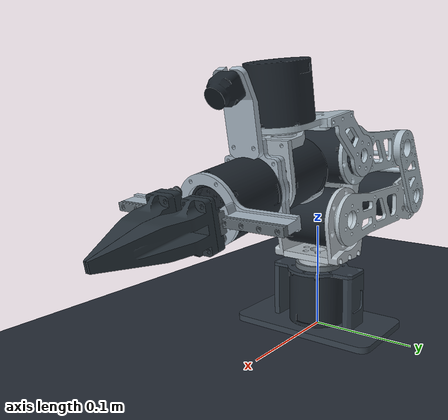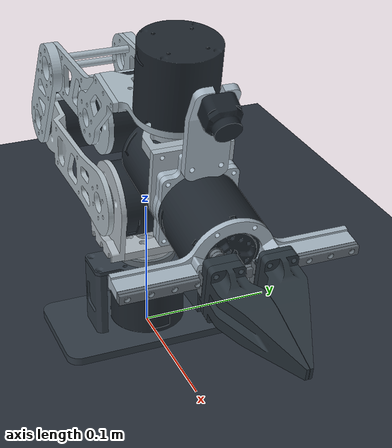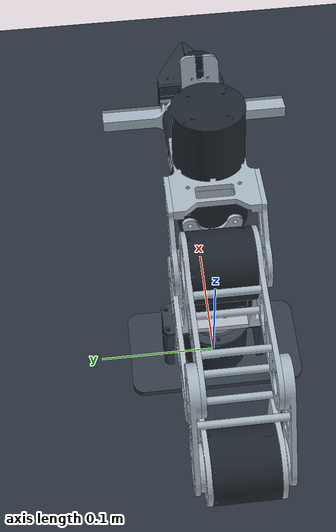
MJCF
<?xml version='1.0' encoding='utf-8'?>
<mujoco model="viscous_arm_dry_cad_v1">
  <compiler angle="radian" meshdir="meshes" autolimits="true" inertiafromgeom="false" fusestatic="false" />
  <option timestep=".001" gravity="0 0 -9.81" integrator="implicitfast" iterations="80" />
  <size njmax="3000" nconmax="1000" />
  <visual>
    <global offwidth="1400" offheight="1000" />
    <headlight diffuse=".7 .7 .7" ambient=".3 .3 .3" />
  </visual>
  <default>
    <joint damping="0" armature="0" />
    <geom friction=".6 .005 .0001" solref=".005 1" solimp=".95 .99 .001" margin="0" />
  </default>
  <asset>
    <mesh name="visual_000" file="part_000.stl" />
    <mesh name="visual_001" file="part_001.stl" />
    <mesh name="visual_002" file="part_002.stl" />
    <mesh name="visual_014" file="part_014.stl" />
    <mesh name="visual_015" file="part_015.stl" />
    <mesh name="visual_016" file="part_016.stl" />
    <mesh name="collision_000" file="collision_000.stl" />
    <mesh name="collision_002" file="collision_002.stl" />
    <mesh name="collision_014_00" file="collision_014_00.stl" />
    <mesh name="collision_014_01" file="collision_014_01.stl" />
    <mesh name="collision_014_02" file="collision_014_02.stl" />
    <mesh name="collision_014_03" file="collision_014_03.stl" />
    <mesh name="collision_014_04" file="collision_014_04.stl" />
    <mesh name="collision_014_05" file="collision_014_05.stl" />
    <mesh name="collision_015" file="collision_015.stl" />
    <mesh name="collision_016" file="collision_016.stl" />
    <mesh name="visual_003" file="part_003.stl" />
    <mesh name="visual_004" file="part_004.stl" />
    <mesh name="visual_005" file="part_005.stl" />
    <mesh name="visual_006" file="part_006.stl" />
    <mesh name="visual_007" file="part_007.stl" />
    <mesh name="visual_019" file="part_019.stl" />
    <mesh name="collision_003_00" file="collision_003_00.stl" />
    <mesh name="collision_003_01" file="collision_003_01.stl" />
    <mesh name="collision_003_02" file="collision_003_02.stl" />
    <mesh name="collision_003_03" file="collision_003_03.stl" />
    <mesh name="collision_003_04" file="collision_003_04.stl" />
    <mesh name="collision_003_05" file="collision_003_05.stl" />
    <mesh name="collision_004" file="collision_004.stl" />
    <mesh name="collision_005_00" file="collision_005_00.stl" />
    <mesh name="collision_005_01" file="collision_005_01.stl" />
    <mesh name="collision_005_02" file="collision_005_02.stl" />
    <mesh name="collision_005_03" file="collision_005_03.stl" />
    <mesh name="collision_005_04" file="collision_005_04.stl" />
    <mesh name="collision_005_05" file="collision_005_05.stl" />
    <mesh name="collision_005_06" file="collision_005_06.stl" />
    <mesh name="collision_006_00" file="collision_006_00.stl" />
    <mesh name="collision_006_01" file="collision_006_01.stl" />
    <mesh name="collision_006_02" file="collision_006_02.stl" />
    <mesh name="collision_006_03" file="collision_006_03.stl" />
    <mesh name="collision_006_04" file="collision_006_04.stl" />
    <mesh name="collision_006_05" file="collision_006_05.stl" />
    <mesh name="collision_019" file="collision_019.stl" />
    <mesh name="visual_008" file="part_008.stl" />
    <mesh name="visual_009" file="part_009.stl" />
    <mesh name="visual_010" file="part_010.stl" />
    <mesh name="visual_011" file="part_011.stl" />
    <mesh name="visual_012" file="part_012.stl" />
    <mesh name="visual_018" file="part_018.stl" />
    <mesh name="collision_upper_arm_shell_00" file="collision_upper_arm_shell_00.stl" />
    <mesh name="collision_upper_arm_shell_01" file="collision_upper_arm_shell_01.stl" />
    <mesh name="collision_upper_arm_shell_02" file="collision_upper_arm_shell_02.stl" />
    <mesh name="visual_013" file="part_013.stl" />
    <mesh name="visual_017" file="part_017.stl" />
    <mesh name="visual_058" file="part_058.stl" />
    <mesh name="visual_060" file="part_060.stl" />
    <mesh name="visual_061" file="part_061.stl" />
    <mesh name="visual_062" file="part_062.stl" />
    <mesh name="visual_063" file="part_063.stl" />
    <mesh name="visual_064" file="part_064.stl" />
    <mesh name="visual_065" file="part_065.stl" />
    <mesh name="visual_066" file="part_066.stl" />
    <mesh name="visual_067" file="part_067.stl" />
    <mesh name="visual_068" file="part_068.stl" />
    <mesh name="visual_069" file="part_069.stl" />
    <mesh name="collision_forearm_shell_00" file="collision_forearm_shell_00.stl" />
    <mesh name="collision_forearm_shell_01" file="collision_forearm_shell_01.stl" />
    <mesh name="collision_forearm_shell_02" file="collision_forearm_shell_02.stl" />
    <mesh name="collision_forearm_shell_03" file="collision_forearm_shell_03.stl" />
    <mesh name="collision_forearm_shell_04" file="collision_forearm_shell_04.stl" />
    <mesh name="collision_forearm_shell_05" file="collision_forearm_shell_05.stl" />
    <mesh name="collision_forearm_shell_06" file="collision_forearm_shell_06.stl" />
    <mesh name="collision_forearm_shell_07" file="collision_forearm_shell_07.stl" />
    <mesh name="visual_053" file="part_053.stl" />
    <mesh name="visual_054" file="part_054.stl" />
    <mesh name="visual_055" file="part_055.stl" />
    <mesh name="visual_056" file="part_056.stl" />
    <mesh name="visual_057" file="part_057.stl" />
    <mesh name="collision_053" file="collision_053.stl" />
    <mesh name="collision_054_00" file="collision_054_00.stl" />
    <mesh name="collision_054_01" file="collision_054_01.stl" />
    <mesh name="collision_054_02" file="collision_054_02.stl" />
    <mesh name="collision_054_03" file="collision_054_03.stl" />
    <mesh name="collision_054_04" file="collision_054_04.stl" />
    <mesh name="collision_054_05" file="collision_054_05.stl" />
    <mesh name="collision_054_06" file="collision_054_06.stl" />
    <mesh name="collision_054_07" file="collision_054_07.stl" />
    <mesh name="collision_054_08" file="collision_054_08.stl" />
    <mesh name="collision_054_09" file="collision_054_09.stl" />
    <mesh name="collision_055_00" file="collision_055_00.stl" />
    <mesh name="collision_055_01" file="collision_055_01.stl" />
    <mesh name="collision_055_02" file="collision_055_02.stl" />
    <mesh name="collision_055_03" file="collision_055_03.stl" />
    <mesh name="collision_055_04" file="collision_055_04.stl" />
    <mesh name="collision_055_05" file="collision_055_05.stl" />
    <mesh name="collision_056_00" file="collision_056_00.stl" />
    <mesh name="collision_056_01" file="collision_056_01.stl" />
    <mesh name="collision_056_02" file="collision_056_02.stl" />
    <mesh name="collision_056_03" file="collision_056_03.stl" />
    <mesh name="collision_056_04" file="collision_056_04.stl" />
    <mesh name="collision_056_05" file="collision_056_05.stl" />
    <mesh name="collision_057" file="collision_057.stl" />
    <mesh name="visual_049" file="part_049.stl" />
    <mesh name="visual_050" file="part_050.stl" />
    <mesh name="visual_051" file="part_051.stl" />
    <mesh name="visual_052" file="part_052.stl" />
    <mesh name="visual_059" file="part_059.stl" />
    <mesh name="collision_049" file="collision_049.stl" />
    <mesh name="collision_050_00" file="collision_050_00.stl" />
    <mesh name="collision_050_01" file="collision_050_01.stl" />
    <mesh name="collision_050_02" file="collision_050_02.stl" />
    <mesh name="collision_050_03" file="collision_050_03.stl" />
    <mesh name="collision_050_04" file="collision_050_04.stl" />
    <mesh name="collision_050_05" file="collision_050_05.stl" />
    <mesh name="collision_050_06" file="collision_050_06.stl" />
    <mesh name="collision_050_07" file="collision_050_07.stl" />
    <mesh name="collision_051_00" file="collision_051_00.stl" />
    <mesh name="collision_051_01" file="collision_051_01.stl" />
    <mesh name="collision_051_02" file="collision_051_02.stl" />
    <mesh name="collision_051_03" file="collision_051_03.stl" />
    <mesh name="collision_051_04" file="collision_051_04.stl" />
    <mesh name="collision_051_05" file="collision_051_05.stl" />
    <mesh name="collision_051_06" file="collision_051_06.stl" />
    <mesh name="collision_051_07" file="collision_051_07.stl" />
    <mesh name="collision_052" file="collision_052.stl" />
    <mesh name="collision_059_00" file="collision_059_00.stl" />
    <mesh name="collision_059_01" file="collision_059_01.stl" />
    <mesh name="collision_059_02" file="collision_059_02.stl" />
    <mesh name="collision_059_03" file="collision_059_03.stl" />
    <mesh name="collision_059_04" file="collision_059_04.stl" />
    <mesh name="visual_020" file="part_020.stl" />
    <mesh name="visual_024" file="part_024.stl" />
    <mesh name="visual_025" file="part_025.stl" />
    <mesh name="visual_046" file="part_046.stl" />
    <mesh name="visual_047" file="part_047.stl" />
    <mesh name="visual_048" file="part_048.stl" />
    <mesh name="visual_070" file="part_070.stl" />
    <mesh name="visual_071" file="part_071.stl" />
    <mesh name="collision_020" file="collision_020.stl" />
    <mesh name="collision_024_00" file="collision_024_00.stl" />
    <mesh name="collision_024_01" file="collision_024_01.stl" />
    <mesh name="collision_024_02" file="collision_024_02.stl" />
    <mesh name="collision_024_03" file="collision_024_03.stl" />
    <mesh name="collision_024_04" file="collision_024_04.stl" />
    <mesh name="collision_024_05" file="collision_024_05.stl" />
    <mesh name="collision_024_06" file="collision_024_06.stl" />
    <mesh name="collision_024_07" file="collision_024_07.stl" />
    <mesh name="collision_024_08" file="collision_024_08.stl" />
    <mesh name="collision_024_09" file="collision_024_09.stl" />
    <mesh name="collision_024_10" file="collision_024_10.stl" />
    <mesh name="collision_024_11" file="collision_024_11.stl" />
    <mesh name="collision_024_12" file="collision_024_12.stl" />
    <mesh name="collision_024_13" file="collision_024_13.stl" />
    <mesh name="collision_024_14" file="collision_024_14.stl" />
    <mesh name="collision_024_15" file="collision_024_15.stl" />
    <mesh name="collision_024_16" file="collision_024_16.stl" />
    <mesh name="collision_024_17" file="collision_024_17.stl" />
    <mesh name="collision_024_18" file="collision_024_18.stl" />
    <mesh name="collision_024_19" file="collision_024_19.stl" />
    <mesh name="collision_024_20" file="collision_024_20.stl" />
    <mesh name="collision_024_21" file="collision_024_21.stl" />
    <mesh name="collision_024_22" file="collision_024_22.stl" />
    <mesh name="collision_024_23" file="collision_024_23.stl" />
    <mesh name="collision_024_24" file="collision_024_24.stl" />
    <mesh name="collision_046" file="collision_046.stl" />
    <mesh name="collision_047" file="collision_047.stl" />
    <mesh name="collision_048" file="collision_048.stl" />
    <mesh name="collision_070_00" file="collision_070_00.stl" />
    <mesh name="collision_070_01" file="collision_070_01.stl" />
    <mesh name="collision_071" file="collision_071.stl" />
    <mesh name="visual_029" file="part_029.stl" />
    <mesh name="visual_030" file="part_030.stl" />
    <mesh name="visual_031" file="part_031.stl" />
    <mesh name="visual_032" file="part_032.stl" />
    <mesh name="visual_041" file="part_041.stl" />
    <mesh name="visual_043" file="part_043.stl" />
    <mesh name="collision_032" file="collision_032.stl" />
    <mesh name="collision_043_00" file="collision_043_00.stl" />
    <mesh name="collision_043_01" file="collision_043_01.stl" />
    <mesh name="collision_043_02" file="collision_043_02.stl" />
    <mesh name="collision_043_03" file="collision_043_03.stl" />
    <mesh name="collision_043_04" file="collision_043_04.stl" />
    <mesh name="collision_043_05" file="collision_043_05.stl" />
    <mesh name="collision_043_06" file="collision_043_06.stl" />
    <mesh name="collision_043_07" file="collision_043_07.stl" />
    <mesh name="collision_043_08" file="collision_043_08.stl" />
    <mesh name="collision_043_09" file="collision_043_09.stl" />
    <mesh name="collision_043_10" file="collision_043_10.stl" />
    <mesh name="collision_043_11" file="collision_043_11.stl" />
    <mesh name="collision_043_12" file="collision_043_12.stl" />
    <mesh name="collision_043_13" file="collision_043_13.stl" />
    <mesh name="collision_043_14" file="collision_043_14.stl" />
    <mesh name="collision_043_15" file="collision_043_15.stl" />
    <mesh name="collision_043_16" file="collision_043_16.stl" />
    <mesh name="collision_043_17" file="collision_043_17.stl" />
    <mesh name="collision_043_18" file="collision_043_18.stl" />
    <mesh name="collision_043_19" file="collision_043_19.stl" />
    <mesh name="collision_043_20" file="collision_043_20.stl" />
    <mesh name="collision_043_21" file="collision_043_21.stl" />
    <mesh name="collision_043_22" file="collision_043_22.stl" />
    <mesh name="visual_036" file="part_036.stl" />
    <mesh name="visual_037" file="part_037.stl" />
    <mesh name="visual_038" file="part_038.stl" />
    <mesh name="visual_039" file="part_039.stl" />
    <mesh name="visual_042" file="part_042.stl" />
    <mesh name="collision_039" file="collision_039.stl" />
    <mesh name="collision_042_00" file="collision_042_00.stl" />
    <mesh name="collision_042_01" file="collision_042_01.stl" />
    <mesh name="collision_042_02" file="collision_042_02.stl" />
    <mesh name="collision_042_03" file="collision_042_03.stl" />
    <mesh name="collision_042_04" file="collision_042_04.stl" />
    <mesh name="collision_042_05" file="collision_042_05.stl" />
    <mesh name="collision_042_06" file="collision_042_06.stl" />
    <mesh name="collision_042_07" file="collision_042_07.stl" />
    <mesh name="collision_042_08" file="collision_042_08.stl" />
    <mesh name="collision_042_09" file="collision_042_09.stl" />
    <mesh name="collision_042_10" file="collision_042_10.stl" />
    <mesh name="collision_042_11" file="collision_042_11.stl" />
    <mesh name="collision_042_12" file="collision_042_12.stl" />
    <mesh name="collision_042_13" file="collision_042_13.stl" />
    <mesh name="collision_042_14" file="collision_042_14.stl" />
    <mesh name="collision_042_15" file="collision_042_15.stl" />
    <mesh name="collision_042_16" file="collision_042_16.stl" />
    <mesh name="collision_042_17" file="collision_042_17.stl" />
    <mesh name="collision_042_18" file="collision_042_18.stl" />
    <mesh name="collision_042_19" file="collision_042_19.stl" />
    <mesh name="collision_042_20" file="collision_042_20.stl" />
    <mesh name="collision_042_21" file="collision_042_21.stl" />
    <mesh name="collision_042_22" file="collision_042_22.stl" />
  </asset>
  <worldbody>
    <light pos="1 -1 2" dir="-1 1 -2" directional="true" />
    <geom name="floor" type="plane" size="2 2 .01" rgba=".16 .19 .23 1" contype="1" conaffinity="1" />
    <body name="base_link" pos="0 0 0">
      <inertial mass="0.6018924308934476" pos="-6.40108732742e-08 1.12100775023e-07 0.0243335290091" fullinertia="0.000774376502184 0.000416854227173 0.000712043680835 -1.38189620676e-08 1.19828224046e-09 2.4491968301e-09" />
      <geom name="visual_000" type="mesh" mesh="visual_000" rgba="0.12 0.15 0.18 1" contype="0" conaffinity="0" group="2" density="0" />
      <geom name="visual_001" type="mesh" mesh="visual_001" rgba="0.38 0.42 0.45 1" contype="0" conaffinity="0" group="2" density="0" />
      <geom name="visual_002" type="mesh" mesh="visual_002" rgba="0.2 0.24 0.28 1" contype="0" conaffinity="0" group="2" density="0" />
      <geom name="visual_014" type="mesh" mesh="visual_014" rgba="0.2 0.24 0.28 1" contype="0" conaffinity="0" group="2" density="0" />
      <geom name="visual_015" type="mesh" mesh="visual_015" rgba="0.2 0.24 0.28 1" contype="0" conaffinity="0" group="2" density="0" />
      <geom name="visual_016" type="mesh" mesh="visual_016" rgba="0.2 0.24 0.28 1" contype="0" conaffinity="0" group="2" density="0" />
      <geom name="collision_000" type="mesh" mesh="collision_000" rgba="1 .4 .05 .2" contype="1" conaffinity="1" group="3" density="0" />
      <geom name="collision_002" type="mesh" mesh="collision_002" rgba="1 .4 .05 .2" contype="1" conaffinity="1" group="3" density="0" />
      <geom name="collision_014_00" type="mesh" mesh="collision_014_00" rgba="1 .4 .05 .2" contype="1" conaffinity="1" group="3" density="0" />
      <geom name="collision_014_01" type="mesh" mesh="collision_014_01" rgba="1 .4 .05 .2" contype="1" conaffinity="1" group="3" density="0" />
      <geom name="collision_014_02" type="mesh" mesh="collision_014_02" rgba="1 .4 .05 .2" contype="1" conaffinity="1" group="3" density="0" />
      <geom name="collision_014_03" type="mesh" mesh="collision_014_03" rgba="1 .4 .05 .2" contype="1" conaffinity="1" group="3" density="0" />
      <geom name="collision_014_04" type="mesh" mesh="collision_014_04" rgba="1 .4 .05 .2" contype="1" conaffinity="1" group="3" density="0" />
      <geom name="collision_014_05" type="mesh" mesh="collision_014_05" rgba="1 .4 .05 .2" contype="1" conaffinity="1" group="3" density="0" />
      <geom name="collision_015" type="mesh" mesh="collision_015" rgba="1 .4 .05 .2" contype="1" conaffinity="1" group="3" density="0" />
      <geom name="collision_016" type="mesh" mesh="collision_016" rgba="1 .4 .05 .2" contype="1" conaffinity="1" group="3" density="0" />
      <body name="yaw_link" pos="0 0 0.0574">
        <inertial mass="0.44987058778450106" pos="-0.000128336200716 -0.00118505903902 0.0458240424225" fullinertia="0.00032796560427 0.000278232746431 0.000232044290727 6.80145683342e-08 -1.37248630227e-06 3.80261037427e-06" />
        <joint name="shoulder_pan" type="hinge" axis="0 0 -1" range="-3.235 2.227" />
        <geom name="visual_003" type="mesh" mesh="visual_003" rgba="0.7 0.74 0.77 1" contype="0" conaffinity="0" group="2" density="0" />
        <geom name="visual_004" type="mesh" mesh="visual_004" rgba="0.7 0.74 0.77 1" contype="0" conaffinity="0" group="2" density="0" />
        <geom name="visual_005" type="mesh" mesh="visual_005" rgba="0.7 0.74 0.77 1" contype="0" conaffinity="0" group="2" density="0" />
        <geom name="visual_006" type="mesh" mesh="visual_006" rgba="0.7 0.74 0.77 1" contype="0" conaffinity="0" group="2" density="0" />
        <geom name="visual_007" type="mesh" mesh="visual_007" rgba="0.38 0.42 0.45 1" contype="0" conaffinity="0" group="2" density="0" />
        <geom name="visual_019" type="mesh" mesh="visual_019" rgba="0.12 0.15 0.18 1" contype="0" conaffinity="0" group="2" density="0" />
        <geom name="collision_003_00" type="mesh" mesh="collision_003_00" rgba="1 .4 .05 .2" contype="1" conaffinity="1" group="3" density="0" />
        <geom name="collision_003_01" type="mesh" mesh="collision_003_01" rgba="1 .4 .05 .2" contype="1" conaffinity="1" group="3" density="0" />
        <geom name="collision_003_02" type="mesh" mesh="collision_003_02" rgba="1 .4 .05 .2" contype="1" conaffinity="1" group="3" density="0" />
        <geom name="collision_003_03" type="mesh" mesh="collision_003_03" rgba="1 .4 .05 .2" contype="1" conaffinity="1" group="3" density="0" />
        <geom name="collision_003_04" type="mesh" mesh="collision_003_04" rgba="1 .4 .05 .2" contype="1" conaffinity="1" group="3" density="0" />
        <geom name="collision_003_05" type="mesh" mesh="collision_003_05" rgba="1 .4 .05 .2" contype="1" conaffinity="1" group="3" density="0" />
        <geom name="collision_004" type="mesh" mesh="collision_004" rgba="1 .4 .05 .2" contype="1" conaffinity="1" group="3" density="0" />
        <geom name="collision_005_00" type="mesh" mesh="collision_005_00" rgba="1 .4 .05 .2" contype="1" conaffinity="1" group="3" density="0" />
        <geom name="collision_005_01" type="mesh" mesh="collision_005_01" rgba="1 .4 .05 .2" contype="1" conaffinity="1" group="3" density="0" />
        <geom name="collision_005_02" type="mesh" mesh="collision_005_02" rgba="1 .4 .05 .2" contype="1" conaffinity="1" group="3" density="0" />
        <geom name="collision_005_03" type="mesh" mesh="collision_005_03" rgba="1 .4 .05 .2" contype="1" conaffinity="1" group="3" density="0" />
        <geom name="collision_005_04" type="mesh" mesh="collision_005_04" rgba="1 .4 .05 .2" contype="1" conaffinity="1" group="3" density="0" />
        <geom name="collision_005_05" type="mesh" mesh="collision_005_05" rgba="1 .4 .05 .2" contype="1" conaffinity="1" group="3" density="0" />
        <geom name="collision_005_06" type="mesh" mesh="collision_005_06" rgba="1 .4 .05 .2" contype="1" conaffinity="1" group="3" density="0" />
        <geom name="collision_006_00" type="mesh" mesh="collision_006_00" rgba="1 .4 .05 .2" contype="1" conaffinity="1" group="3" density="0" />
        <geom name="collision_006_01" type="mesh" mesh="collision_006_01" rgba="1 .4 .05 .2" contype="1" conaffinity="1" group="3" density="0" />
        <geom name="collision_006_02" type="mesh" mesh="collision_006_02" rgba="1 .4 .05 .2" contype="1" conaffinity="1" group="3" density="0" />
        <geom name="collision_006_03" type="mesh" mesh="collision_006_03" rgba="1 .4 .05 .2" contype="1" conaffinity="1" group="3" density="0" />
        <geom name="collision_006_04" type="mesh" mesh="collision_006_04" rgba="1 .4 .05 .2" contype="1" conaffinity="1" group="3" density="0" />
        <geom name="collision_006_05" type="mesh" mesh="collision_006_05" rgba="1 .4 .05 .2" contype="1" conaffinity="1" group="3" density="0" />
        <geom name="collision_019" type="mesh" mesh="collision_019" rgba="1 .4 .05 .2" contype="1" conaffinity="1" group="3" density="0" />
        <body name="upper_arm_link" pos="9.11502411714e-10 0 0.0536">
          <inertial mass="0.48659359287584225" pos="-0.129741790446 -0.000566773753215 -7.81405439297e-08" fullinertia="0.000344506255212 0.00168790946116 0.00184151527413 -4.7898150481e-05 -1.51515204264e-07 9.41442218691e-10" />
          <joint name="shoulder_lift" type="hinge" axis="0 -1 0" range="-3.078 0" />
          <geom name="visual_008" type="mesh" mesh="visual_008" rgba="0.69 0.74 0.77 1" contype="0" conaffinity="0" group="2" density="0" />
          <geom name="visual_009" type="mesh" mesh="visual_009" rgba="0.69 0.74 0.77 1" contype="0" conaffinity="0" group="2" density="0" />
          <geom name="visual_010" type="mesh" mesh="visual_010" rgba="0.69 0.74 0.77 1" contype="0" conaffinity="0" group="2" density="0" />
          <geom name="visual_011" type="mesh" mesh="visual_011" rgba="0.69 0.74 0.77 1" contype="0" conaffinity="0" group="2" density="0" />
          <geom name="visual_012" type="mesh" mesh="visual_012" rgba="0.38 0.42 0.45 1" contype="0" conaffinity="0" group="2" density="0" />
          <geom name="visual_018" type="mesh" mesh="visual_018" rgba="0.12 0.15 0.18 1" contype="0" conaffinity="0" group="2" density="0" />
          <geom name="collision_upper_arm_shell_00" type="mesh" mesh="collision_upper_arm_shell_00" rgba="1 .4 .05 .2" contype="1" conaffinity="1" group="3" density="0" />
          <geom name="collision_upper_arm_shell_01" type="mesh" mesh="collision_upper_arm_shell_01" rgba="1 .4 .05 .2" contype="1" conaffinity="1" group="3" density="0" />
          <geom name="collision_upper_arm_shell_02" type="mesh" mesh="collision_upper_arm_shell_02" rgba="1 .4 .05 .2" contype="1" conaffinity="1" group="3" density="0" />
          <body name="forearm_link" pos="-0.159999998467 0 1.41153442712e-09">
            <inertial mass="0.5232968101977042" pos="0.103351869044 7.69670170489e-05 0.0526505055156" fullinertia="0.000498589907182 0.00173137825684 0.0017482479131 3.72447943969e-05 -0.000315553372162 1.62160859004e-05" />
            <joint name="elbow_flex" type="hinge" axis="0 -1 0" range="0 4.383" />
            <geom name="visual_013" type="mesh" mesh="visual_013" rgba="0.67 0.73 0.77 1" contype="0" conaffinity="0" group="2" density="0" />
            <geom name="visual_017" type="mesh" mesh="visual_017" rgba="0.67 0.73 0.77 1" contype="0" conaffinity="0" group="2" density="0" />
            <geom name="visual_058" type="mesh" mesh="visual_058" rgba="0.12 0.15 0.18 1" contype="0" conaffinity="0" group="2" density="0" />
            <geom name="visual_060" type="mesh" mesh="visual_060" rgba="0.67 0.73 0.77 1" contype="0" conaffinity="0" group="2" density="0" />
            <geom name="visual_061" type="mesh" mesh="visual_061" rgba="0.67 0.73 0.77 1" contype="0" conaffinity="0" group="2" density="0" />
            <geom name="visual_062" type="mesh" mesh="visual_062" rgba="0.67 0.73 0.77 1" contype="0" conaffinity="0" group="2" density="0" />
            <geom name="visual_063" type="mesh" mesh="visual_063" rgba="0.67 0.73 0.77 1" contype="0" conaffinity="0" group="2" density="0" />
            <geom name="visual_064" type="mesh" mesh="visual_064" rgba="0.67 0.73 0.77 1" contype="0" conaffinity="0" group="2" density="0" />
            <geom name="visual_065" type="mesh" mesh="visual_065" rgba="0.67 0.73 0.77 1" contype="0" conaffinity="0" group="2" density="0" />
            <geom name="visual_066" type="mesh" mesh="visual_066" rgba="0.67 0.73 0.77 1" contype="0" conaffinity="0" group="2" density="0" />
            <geom name="visual_067" type="mesh" mesh="visual_067" rgba="0.67 0.73 0.77 1" contype="0" conaffinity="0" group="2" density="0" />
            <geom name="visual_068" type="mesh" mesh="visual_068" rgba="0.67 0.73 0.77 1" contype="0" conaffinity="0" group="2" density="0" />
            <geom name="visual_069" type="mesh" mesh="visual_069" rgba="0.67 0.73 0.77 1" contype="0" conaffinity="0" group="2" density="0" />
            <geom name="collision_forearm_shell_00" type="mesh" mesh="collision_forearm_shell_00" rgba="1 .4 .05 .2" contype="1" conaffinity="1" group="3" density="0" />
            <geom name="collision_forearm_shell_01" type="mesh" mesh="collision_forearm_shell_01" rgba="1 .4 .05 .2" contype="1" conaffinity="1" group="3" density="0" />
            <geom name="collision_forearm_shell_02" type="mesh" mesh="collision_forearm_shell_02" rgba="1 .4 .05 .2" contype="1" conaffinity="1" group="3" density="0" />
            <geom name="collision_forearm_shell_03" type="mesh" mesh="collision_forearm_shell_03" rgba="1 .4 .05 .2" contype="1" conaffinity="1" group="3" density="0" />
            <geom name="collision_forearm_shell_04" type="mesh" mesh="collision_forearm_shell_04" rgba="1 .4 .05 .2" contype="1" conaffinity="1" group="3" density="0" />
            <geom name="collision_forearm_shell_05" type="mesh" mesh="collision_forearm_shell_05" rgba="1 .4 .05 .2" contype="1" conaffinity="1" group="3" density="0" />
            <geom name="collision_forearm_shell_06" type="mesh" mesh="collision_forearm_shell_06" rgba="1 .4 .05 .2" contype="1" conaffinity="1" group="3" density="0" />
            <geom name="collision_forearm_shell_07" type="mesh" mesh="collision_forearm_shell_07" rgba="1 .4 .05 .2" contype="1" conaffinity="1" group="3" density="0" />
            <body name="wrist_pitch_link" pos="0.137999995803 0 0.058787756528">
              <inertial mass="0.40498556423175097" pos="0.0736904003854 9.43699018543e-08 0.0507139642881" fullinertia="0.000317020106609 0.000478693120364 0.000441394493776 -1.27236376116e-08 -0.000145472110861 1.01257343307e-08" />
              <joint name="wrist_flex" type="hinge" axis="0 -1 0" range="-2.109 1.606" />
              <geom name="visual_053" type="mesh" mesh="visual_053" rgba="0.12 0.15 0.18 1" contype="0" conaffinity="0" group="2" density="0" />
              <geom name="visual_054" type="mesh" mesh="visual_054" rgba="0.66 0.72 0.76 1" contype="0" conaffinity="0" group="2" density="0" />
              <geom name="visual_055" type="mesh" mesh="visual_055" rgba="0.66 0.72 0.76 1" contype="0" conaffinity="0" group="2" density="0" />
              <geom name="visual_056" type="mesh" mesh="visual_056" rgba="0.66 0.72 0.76 1" contype="0" conaffinity="0" group="2" density="0" />
              <geom name="visual_057" type="mesh" mesh="visual_057" rgba="0.66 0.72 0.76 1" contype="0" conaffinity="0" group="2" density="0" />
              <geom name="collision_053" type="mesh" mesh="collision_053" rgba="1 .4 .05 .2" contype="1" conaffinity="1" group="3" density="0" />
              <geom name="collision_054_00" type="mesh" mesh="collision_054_00" rgba="1 .4 .05 .2" contype="1" conaffinity="1" group="3" density="0" />
              <geom name="collision_054_01" type="mesh" mesh="collision_054_01" rgba="1 .4 .05 .2" contype="1" conaffinity="1" group="3" density="0" />
              <geom name="collision_054_02" type="mesh" mesh="collision_054_02" rgba="1 .4 .05 .2" contype="1" conaffinity="1" group="3" density="0" />
              <geom name="collision_054_03" type="mesh" mesh="collision_054_03" rgba="1 .4 .05 .2" contype="1" conaffinity="1" group="3" density="0" />
              <geom name="collision_054_04" type="mesh" mesh="collision_054_04" rgba="1 .4 .05 .2" contype="1" conaffinity="1" group="3" density="0" />
              <geom name="collision_054_05" type="mesh" mesh="collision_054_05" rgba="1 .4 .05 .2" contype="1" conaffinity="1" group="3" density="0" />
              <geom name="collision_054_06" type="mesh" mesh="collision_054_06" rgba="1 .4 .05 .2" contype="1" conaffinity="1" group="3" density="0" />
              <geom name="collision_054_07" type="mesh" mesh="collision_054_07" rgba="1 .4 .05 .2" contype="1" conaffinity="1" group="3" density="0" />
              <geom name="collision_054_08" type="mesh" mesh="collision_054_08" rgba="1 .4 .05 .2" contype="1" conaffinity="1" group="3" density="0" />
              <geom name="collision_054_09" type="mesh" mesh="collision_054_09" rgba="1 .4 .05 .2" contype="1" conaffinity="1" group="3" density="0" />
              <geom name="collision_055_00" type="mesh" mesh="collision_055_00" rgba="1 .4 .05 .2" contype="1" conaffinity="1" group="3" density="0" />
              <geom name="collision_055_01" type="mesh" mesh="collision_055_01" rgba="1 .4 .05 .2" contype="1" conaffinity="1" group="3" density="0" />
              <geom name="collision_055_02" type="mesh" mesh="collision_055_02" rgba="1 .4 .05 .2" contype="1" conaffinity="1" group="3" density="0" />
              <geom name="collision_055_03" type="mesh" mesh="collision_055_03" rgba="1 .4 .05 .2" contype="1" conaffinity="1" group="3" density="0" />
              <geom name="collision_055_04" type="mesh" mesh="collision_055_04" rgba="1 .4 .05 .2" contype="1" conaffinity="1" group="3" density="0" />
              <geom name="collision_055_05" type="mesh" mesh="collision_055_05" rgba="1 .4 .05 .2" contype="1" conaffinity="1" group="3" density="0" />
              <geom name="collision_056_00" type="mesh" mesh="collision_056_00" rgba="1 .4 .05 .2" contype="1" conaffinity="1" group="3" density="0" />
              <geom name="collision_056_01" type="mesh" mesh="collision_056_01" rgba="1 .4 .05 .2" contype="1" conaffinity="1" group="3" density="0" />
              <geom name="collision_056_02" type="mesh" mesh="collision_056_02" rgba="1 .4 .05 .2" contype="1" conaffinity="1" group="3" density="0" />
              <geom name="collision_056_03" type="mesh" mesh="collision_056_03" rgba="1 .4 .05 .2" contype="1" conaffinity="1" group="3" density="0" />
              <geom name="collision_056_04" type="mesh" mesh="collision_056_04" rgba="1 .4 .05 .2" contype="1" conaffinity="1" group="3" density="0" />
              <geom name="collision_056_05" type="mesh" mesh="collision_056_05" rgba="1 .4 .05 .2" contype="1" conaffinity="1" group="3" density="0" />
              <geom name="collision_057" type="mesh" mesh="collision_057" rgba="1 .4 .05 .2" contype="1" conaffinity="1" group="3" density="0" />
              <body name="wrist_yaw_link" pos="0.0803686907164 -3.01501062855e-15 0.0331094178828">
                <inertial mass="0.3975882203465001" pos="-0.000774742464369 3.57321818496e-05 -0.0418115559197" fullinertia="0.000215433375245 0.000242402985729 0.00019362994161 -4.73600586491e-07 -2.00359479786e-05 -1.72208651652e-07" />
                <joint name="wrist_yaw" type="hinge" axis="-0.160775313598 2.88046501262e-14 -0.986991032653" range="-1.556 1.505" />
                <geom name="visual_049" type="mesh" mesh="visual_049" rgba="0.12 0.15 0.18 1" contype="0" conaffinity="0" group="2" density="0" />
                <geom name="visual_050" type="mesh" mesh="visual_050" rgba="0.65 0.7 0.74 1" contype="0" conaffinity="0" group="2" density="0" />
                <geom name="visual_051" type="mesh" mesh="visual_051" rgba="0.65 0.7 0.74 1" contype="0" conaffinity="0" group="2" density="0" />
                <geom name="visual_052" type="mesh" mesh="visual_052" rgba="0.65 0.7 0.74 1" contype="0" conaffinity="0" group="2" density="0" />
                <geom name="visual_059" type="mesh" mesh="visual_059" rgba="0.65 0.7 0.74 1" contype="0" conaffinity="0" group="2" density="0" />
                <geom name="collision_049" type="mesh" mesh="collision_049" rgba="1 .4 .05 .2" contype="1" conaffinity="1" group="3" density="0" />
                <geom name="collision_050_00" type="mesh" mesh="collision_050_00" rgba="1 .4 .05 .2" contype="1" conaffinity="1" group="3" density="0" />
                <geom name="collision_050_01" type="mesh" mesh="collision_050_01" rgba="1 .4 .05 .2" contype="1" conaffinity="1" group="3" density="0" />
                <geom name="collision_050_02" type="mesh" mesh="collision_050_02" rgba="1 .4 .05 .2" contype="1" conaffinity="1" group="3" density="0" />
                <geom name="collision_050_03" type="mesh" mesh="collision_050_03" rgba="1 .4 .05 .2" contype="1" conaffinity="1" group="3" density="0" />
                <geom name="collision_050_04" type="mesh" mesh="collision_050_04" rgba="1 .4 .05 .2" contype="1" conaffinity="1" group="3" density="0" />
                <geom name="collision_050_05" type="mesh" mesh="collision_050_05" rgba="1 .4 .05 .2" contype="1" conaffinity="1" group="3" density="0" />
                <geom name="collision_050_06" type="mesh" mesh="collision_050_06" rgba="1 .4 .05 .2" contype="1" conaffinity="1" group="3" density="0" />
                <geom name="collision_050_07" type="mesh" mesh="collision_050_07" rgba="1 .4 .05 .2" contype="1" conaffinity="1" group="3" density="0" />
                <geom name="collision_051_00" type="mesh" mesh="collision_051_00" rgba="1 .4 .05 .2" contype="1" conaffinity="1" group="3" density="0" />
                <geom name="collision_051_01" type="mesh" mesh="collision_051_01" rgba="1 .4 .05 .2" contype="1" conaffinity="1" group="3" density="0" />
                <geom name="collision_051_02" type="mesh" mesh="collision_051_02" rgba="1 .4 .05 .2" contype="1" conaffinity="1" group="3" density="0" />
                <geom name="collision_051_03" type="mesh" mesh="collision_051_03" rgba="1 .4 .05 .2" contype="1" conaffinity="1" group="3" density="0" />
                <geom name="collision_051_04" type="mesh" mesh="collision_051_04" rgba="1 .4 .05 .2" contype="1" conaffinity="1" group="3" density="0" />
                <geom name="collision_051_05" type="mesh" mesh="collision_051_05" rgba="1 .4 .05 .2" contype="1" conaffinity="1" group="3" density="0" />
                <geom name="collision_051_06" type="mesh" mesh="collision_051_06" rgba="1 .4 .05 .2" contype="1" conaffinity="1" group="3" density="0" />
                <geom name="collision_051_07" type="mesh" mesh="collision_051_07" rgba="1 .4 .05 .2" contype="1" conaffinity="1" group="3" density="0" />
                <geom name="collision_052" type="mesh" mesh="collision_052" rgba="1 .4 .05 .2" contype="1" conaffinity="1" group="3" density="0" />
                <geom name="collision_059_00" type="mesh" mesh="collision_059_00" rgba="1 .4 .05 .2" contype="1" conaffinity="1" group="3" density="0" />
                <geom name="collision_059_01" type="mesh" mesh="collision_059_01" rgba="1 .4 .05 .2" contype="1" conaffinity="1" group="3" density="0" />
                <geom name="collision_059_02" type="mesh" mesh="collision_059_02" rgba="1 .4 .05 .2" contype="1" conaffinity="1" group="3" density="0" />
                <geom name="collision_059_03" type="mesh" mesh="collision_059_03" rgba="1 .4 .05 .2" contype="1" conaffinity="1" group="3" density="0" />
                <geom name="collision_059_04" type="mesh" mesh="collision_059_04" rgba="1 .4 .05 .2" contype="1" conaffinity="1" group="3" density="0" />
                <body name="wrist_roll_link" pos="0.0315560923865 1.99672587609e-15 -0.0513413384447">
                  <inertial mass="0.5645111321125538" pos="0.038150954236 -8.22234169406e-05 -0.00107589223743" fullinertia="0.000599711133899 0.000646815548227 0.000607615117469 1.18052890445e-06 3.62563392753e-05 -4.7804342683e-06" />
                  <joint name="wrist_roll" type="hinge" axis="-0.986991032653 -3.07367803248e-15 0.160775313598" range="-2.641 2.68" />
                  <geom name="visual_020" type="mesh" mesh="visual_020" rgba="0.12 0.15 0.18 1" contype="0" conaffinity="0" group="2" density="0" />
                  <geom name="visual_024" type="mesh" mesh="visual_024" rgba="0.65 0.71 0.76 1" contype="0" conaffinity="0" group="2" density="0" />
                  <geom name="visual_025" type="mesh" mesh="visual_025" rgba="0.38 0.42 0.45 1" contype="0" conaffinity="0" group="2" density="0" />
                  <geom name="visual_046" type="mesh" mesh="visual_046" rgba="0.65 0.71 0.76 1" contype="0" conaffinity="0" group="2" density="0" />
                  <geom name="visual_047" type="mesh" mesh="visual_047" rgba="0.65 0.71 0.76 1" contype="0" conaffinity="0" group="2" density="0" />
                  <geom name="visual_048" type="mesh" mesh="visual_048" rgba="0.65 0.71 0.76 1" contype="0" conaffinity="0" group="2" density="0" />
                  <geom name="visual_070" type="mesh" mesh="visual_070" rgba="0.65 0.71 0.76 1" contype="0" conaffinity="0" group="2" density="0" />
                  <geom name="visual_071" type="mesh" mesh="visual_071" rgba="0.1 0.13 0.16 1" contype="0" conaffinity="0" group="2" density="0" />
                  <geom name="collision_020" type="mesh" mesh="collision_020" rgba="1 .4 .05 .2" contype="1" conaffinity="1" group="3" density="0" />
                  <geom name="collision_024_00" type="mesh" mesh="collision_024_00" rgba="1 .4 .05 .2" contype="1" conaffinity="1" group="3" density="0" />
                  <geom name="collision_024_01" type="mesh" mesh="collision_024_01" rgba="1 .4 .05 .2" contype="1" conaffinity="1" group="3" density="0" />
                  <geom name="collision_024_02" type="mesh" mesh="collision_024_02" rgba="1 .4 .05 .2" contype="1" conaffinity="1" group="3" density="0" />
                  <geom name="collision_024_03" type="mesh" mesh="collision_024_03" rgba="1 .4 .05 .2" contype="1" conaffinity="1" group="3" density="0" />
                  <geom name="collision_024_04" type="mesh" mesh="collision_024_04" rgba="1 .4 .05 .2" contype="1" conaffinity="1" group="3" density="0" />
                  <geom name="collision_024_05" type="mesh" mesh="collision_024_05" rgba="1 .4 .05 .2" contype="1" conaffinity="1" group="3" density="0" />
                  <geom name="collision_024_06" type="mesh" mesh="collision_024_06" rgba="1 .4 .05 .2" contype="1" conaffinity="1" group="3" density="0" />
                  <geom name="collision_024_07" type="mesh" mesh="collision_024_07" rgba="1 .4 .05 .2" contype="1" conaffinity="1" group="3" density="0" />
                  <geom name="collision_024_08" type="mesh" mesh="collision_024_08" rgba="1 .4 .05 .2" contype="1" conaffinity="1" group="3" density="0" />
                  <geom name="collision_024_09" type="mesh" mesh="collision_024_09" rgba="1 .4 .05 .2" contype="1" conaffinity="1" group="3" density="0" />
                  <geom name="collision_024_10" type="mesh" mesh="collision_024_10" rgba="1 .4 .05 .2" contype="1" conaffinity="1" group="3" density="0" />
                  <geom name="collision_024_11" type="mesh" mesh="collision_024_11" rgba="1 .4 .05 .2" contype="1" conaffinity="1" group="3" density="0" />
                  <geom name="collision_024_12" type="mesh" mesh="collision_024_12" rgba="1 .4 .05 .2" contype="1" conaffinity="1" group="3" density="0" />
                  <geom name="collision_024_13" type="mesh" mesh="collision_024_13" rgba="1 .4 .05 .2" contype="1" conaffinity="1" group="3" density="0" />
                  <geom name="collision_024_14" type="mesh" mesh="collision_024_14" rgba="1 .4 .05 .2" contype="1" conaffinity="1" group="3" density="0" />
                  <geom name="collision_024_15" type="mesh" mesh="collision_024_15" rgba="1 .4 .05 .2" contype="1" conaffinity="1" group="3" density="0" />
                  <geom name="collision_024_16" type="mesh" mesh="collision_024_16" rgba="1 .4 .05 .2" contype="1" conaffinity="1" group="3" density="0" />
                  <geom name="collision_024_17" type="mesh" mesh="collision_024_17" rgba="1 .4 .05 .2" contype="1" conaffinity="1" group="3" density="0" />
                  <geom name="collision_024_18" type="mesh" mesh="collision_024_18" rgba="1 .4 .05 .2" contype="1" conaffinity="1" group="3" density="0" />
                  <geom name="collision_024_19" type="mesh" mesh="collision_024_19" rgba="1 .4 .05 .2" contype="1" conaffinity="1" group="3" density="0" />
                  <geom name="collision_024_20" type="mesh" mesh="collision_024_20" rgba="1 .4 .05 .2" contype="1" conaffinity="1" group="3" density="0" />
                  <geom name="collision_024_21" type="mesh" mesh="collision_024_21" rgba="1 .4 .05 .2" contype="1" conaffinity="1" group="3" density="0" />
                  <geom name="collision_024_22" type="mesh" mesh="collision_024_22" rgba="1 .4 .05 .2" contype="1" conaffinity="1" group="3" density="0" />
                  <geom name="collision_024_23" type="mesh" mesh="collision_024_23" rgba="1 .4 .05 .2" contype="1" conaffinity="1" group="3" density="0" />
                  <geom name="collision_024_24" type="mesh" mesh="collision_024_24" rgba="1 .4 .05 .2" contype="1" conaffinity="1" group="3" density="0" />
                  <geom name="collision_046" type="mesh" mesh="collision_046" rgba="1 .4 .05 .2" contype="1" conaffinity="1" group="3" density="0" />
                  <geom name="collision_047" type="mesh" mesh="collision_047" rgba="1 .4 .05 .2" contype="1" conaffinity="1" group="3" density="0" />
                  <geom name="collision_048" type="mesh" mesh="collision_048" rgba="1 .4 .05 .2" contype="1" conaffinity="1" group="3" density="0" />
                  <geom name="collision_070_00" type="mesh" mesh="collision_070_00" rgba="1 .4 .05 .2" contype="1" conaffinity="1" group="3" density="0" />
                  <geom name="collision_070_01" type="mesh" mesh="collision_070_01" rgba="1 .4 .05 .2" contype="1" conaffinity="1" group="3" density="0" />
                  <geom name="collision_071" type="mesh" mesh="collision_071" rgba="1 .4 .05 .2" contype="1" conaffinity="1" group="3" density="0" />
                  <body name="gripper_left" pos="0 0 0">
                    <inertial mass="0.04069358132644238" pos="0.0892684585178 0.0160110042169 -0.0167195694783" fullinertia="5.3014351803e-06 1.59896590211e-05 1.44901436764e-05 2.14725551376e-06 4.03841338943e-07 -2.28246078983e-07" />
                    <joint name="gripper_left_joint" type="slide" axis="0 1 0" range="0 0.0524125" />
                    <geom name="visual_029" type="mesh" mesh="visual_029" rgba="0.38 0.42 0.45 1" contype="0" conaffinity="0" group="2" density="0" />
                    <geom name="visual_030" type="mesh" mesh="visual_030" rgba="0.38 0.42 0.45 1" contype="0" conaffinity="0" group="2" density="0" />
                    <geom name="visual_031" type="mesh" mesh="visual_031" rgba="0.38 0.42 0.45 1" contype="0" conaffinity="0" group="2" density="0" />
                    <geom name="visual_032" type="mesh" mesh="visual_032" rgba="0.16 0.2 0.23 1" contype="0" conaffinity="0" group="2" density="0" />
                    <geom name="visual_041" type="mesh" mesh="visual_041" rgba="0.38 0.42 0.45 1" contype="0" conaffinity="0" group="2" density="0" />
                    <geom name="visual_043" type="mesh" mesh="visual_043" rgba="0.16 0.2 0.23 1" contype="0" conaffinity="0" group="2" density="0" />
                    <geom name="collision_032" type="mesh" mesh="collision_032" rgba="1 .4 .05 .2" contype="1" conaffinity="1" group="3" density="0" />
                    <geom name="collision_043_00" type="mesh" mesh="collision_043_00" rgba="1 .4 .05 .2" contype="1" conaffinity="1" group="3" density="0" />
                    <geom name="collision_043_01" type="mesh" mesh="collision_043_01" rgba="1 .4 .05 .2" contype="1" conaffinity="1" group="3" density="0" />
                    <geom name="collision_043_02" type="mesh" mesh="collision_043_02" rgba="1 .4 .05 .2" contype="1" conaffinity="1" group="3" density="0" />
                    <geom name="collision_043_03" type="mesh" mesh="collision_043_03" rgba="1 .4 .05 .2" contype="1" conaffinity="1" group="3" density="0" />
                    <geom name="collision_043_04" type="mesh" mesh="collision_043_04" rgba="1 .4 .05 .2" contype="1" conaffinity="1" group="3" density="0" />
                    <geom name="collision_043_05" type="mesh" mesh="collision_043_05" rgba="1 .4 .05 .2" contype="1" conaffinity="1" group="3" density="0" />
                    <geom name="collision_043_06" type="mesh" mesh="collision_043_06" rgba="1 .4 .05 .2" contype="1" conaffinity="1" group="3" density="0" />
                    <geom name="collision_043_07" type="mesh" mesh="collision_043_07" rgba="1 .4 .05 .2" contype="1" conaffinity="1" group="3" density="0" />
                    <geom name="collision_043_08" type="mesh" mesh="collision_043_08" rgba="1 .4 .05 .2" contype="1" conaffinity="1" group="3" density="0" />
                    <geom name="collision_043_09" type="mesh" mesh="collision_043_09" rgba="1 .4 .05 .2" contype="1" conaffinity="1" group="3" density="0" />
                    <geom name="collision_043_10" type="mesh" mesh="collision_043_10" rgba="1 .4 .05 .2" contype="1" conaffinity="1" group="3" density="0" />
                    <geom name="collision_043_11" type="mesh" mesh="collision_043_11" rgba="1 .4 .05 .2" contype="1" conaffinity="1" group="3" density="0" />
                    <geom name="collision_043_12" type="mesh" mesh="collision_043_12" rgba="1 .4 .05 .2" contype="1" conaffinity="1" group="3" density="0" />
                    <geom name="collision_043_13" type="mesh" mesh="collision_043_13" rgba="1 .4 .05 .2" contype="1" conaffinity="1" group="3" density="0" />
                    <geom name="collision_043_14" type="mesh" mesh="collision_043_14" rgba="1 .4 .05 .2" contype="1" conaffinity="1" group="3" density="0" />
                    <geom name="collision_043_15" type="mesh" mesh="collision_043_15" rgba="1 .4 .05 .2" contype="1" conaffinity="1" group="3" density="0" />
                    <geom name="collision_043_16" type="mesh" mesh="collision_043_16" rgba="1 .4 .05 .2" contype="1" conaffinity="1" group="3" density="0" />
                    <geom name="collision_043_17" type="mesh" mesh="collision_043_17" rgba="1 .4 .05 .2" contype="1" conaffinity="1" group="3" density="0" />
                    <geom name="collision_043_18" type="mesh" mesh="collision_043_18" rgba="1 .4 .05 .2" contype="1" conaffinity="1" group="3" density="0" />
                    <geom name="collision_043_19" type="mesh" mesh="collision_043_19" rgba="1 .4 .05 .2" contype="1" conaffinity="1" group="3" density="0" />
                    <geom name="collision_043_20" type="mesh" mesh="collision_043_20" rgba="1 .4 .05 .2" contype="1" conaffinity="1" group="3" density="0" />
                    <geom name="collision_043_21" type="mesh" mesh="collision_043_21" rgba="1 .4 .05 .2" contype="1" conaffinity="1" group="3" density="0" />
                    <geom name="collision_043_22" type="mesh" mesh="collision_043_22" rgba="1 .4 .05 .2" contype="1" conaffinity="1" group="3" density="0" />
                  </body>
                  <body name="gripper_right" pos="0 0 0">
                    <inertial mass="0.03881005908593668" pos="0.0905860360995 -0.0159444649491 -0.0132522005216" fullinertia="5.45794507381e-06 1.51147921446e-05 1.34435047414e-05 -2.07374426577e-06 2.03143316018e-06 4.21700053103e-07" />
                    <joint name="gripper_right_joint" type="slide" axis="0 -1 0" range="0 0.0524125" />
                    <geom name="visual_036" type="mesh" mesh="visual_036" rgba="0.38 0.42 0.45 1" contype="0" conaffinity="0" group="2" density="0" />
                    <geom name="visual_037" type="mesh" mesh="visual_037" rgba="0.38 0.42 0.45 1" contype="0" conaffinity="0" group="2" density="0" />
                    <geom name="visual_038" type="mesh" mesh="visual_038" rgba="0.38 0.42 0.45 1" contype="0" conaffinity="0" group="2" density="0" />
                    <geom name="visual_039" type="mesh" mesh="visual_039" rgba="0.16 0.2 0.23 1" contype="0" conaffinity="0" group="2" density="0" />
                    <geom name="visual_042" type="mesh" mesh="visual_042" rgba="0.16 0.2 0.23 1" contype="0" conaffinity="0" group="2" density="0" />
                    <geom name="collision_039" type="mesh" mesh="collision_039" rgba="1 .4 .05 .2" contype="1" conaffinity="1" group="3" density="0" />
                    <geom name="collision_042_00" type="mesh" mesh="collision_042_00" rgba="1 .4 .05 .2" contype="1" conaffinity="1" group="3" density="0" />
                    <geom name="collision_042_01" type="mesh" mesh="collision_042_01" rgba="1 .4 .05 .2" contype="1" conaffinity="1" group="3" density="0" />
                    <geom name="collision_042_02" type="mesh" mesh="collision_042_02" rgba="1 .4 .05 .2" contype="1" conaffinity="1" group="3" density="0" />
                    <geom name="collision_042_03" type="mesh" mesh="collision_042_03" rgba="1 .4 .05 .2" contype="1" conaffinity="1" group="3" density="0" />
                    <geom name="collision_042_04" type="mesh" mesh="collision_042_04" rgba="1 .4 .05 .2" contype="1" conaffinity="1" group="3" density="0" />
                    <geom name="collision_042_05" type="mesh" mesh="collision_042_05" rgba="1 .4 .05 .2" contype="1" conaffinity="1" group="3" density="0" />
                    <geom name="collision_042_06" type="mesh" mesh="collision_042_06" rgba="1 .4 .05 .2" contype="1" conaffinity="1" group="3" density="0" />
                    <geom name="collision_042_07" type="mesh" mesh="collision_042_07" rgba="1 .4 .05 .2" contype="1" conaffinity="1" group="3" density="0" />
                    <geom name="collision_042_08" type="mesh" mesh="collision_042_08" rgba="1 .4 .05 .2" contype="1" conaffinity="1" group="3" density="0" />
                    <geom name="collision_042_09" type="mesh" mesh="collision_042_09" rgba="1 .4 .05 .2" contype="1" conaffinity="1" group="3" density="0" />
                    <geom name="collision_042_10" type="mesh" mesh="collision_042_10" rgba="1 .4 .05 .2" contype="1" conaffinity="1" group="3" density="0" />
                    <geom name="collision_042_11" type="mesh" mesh="collision_042_11" rgba="1 .4 .05 .2" contype="1" conaffinity="1" group="3" density="0" />
                    <geom name="collision_042_12" type="mesh" mesh="collision_042_12" rgba="1 .4 .05 .2" contype="1" conaffinity="1" group="3" density="0" />
                    <geom name="collision_042_13" type="mesh" mesh="collision_042_13" rgba="1 .4 .05 .2" contype="1" conaffinity="1" group="3" density="0" />
                    <geom name="collision_042_14" type="mesh" mesh="collision_042_14" rgba="1 .4 .05 .2" contype="1" conaffinity="1" group="3" density="0" />
                    <geom name="collision_042_15" type="mesh" mesh="collision_042_15" rgba="1 .4 .05 .2" contype="1" conaffinity="1" group="3" density="0" />
                    <geom name="collision_042_16" type="mesh" mesh="collision_042_16" rgba="1 .4 .05 .2" contype="1" conaffinity="1" group="3" density="0" />
                    <geom name="collision_042_17" type="mesh" mesh="collision_042_17" rgba="1 .4 .05 .2" contype="1" conaffinity="1" group="3" density="0" />
                    <geom name="collision_042_18" type="mesh" mesh="collision_042_18" rgba="1 .4 .05 .2" contype="1" conaffinity="1" group="3" density="0" />
                    <geom name="collision_042_19" type="mesh" mesh="collision_042_19" rgba="1 .4 .05 .2" contype="1" conaffinity="1" group="3" density="0" />
                    <geom name="collision_042_20" type="mesh" mesh="collision_042_20" rgba="1 .4 .05 .2" contype="1" conaffinity="1" group="3" density="0" />
                    <geom name="collision_042_21" type="mesh" mesh="collision_042_21" rgba="1 .4 .05 .2" contype="1" conaffinity="1" group="3" density="0" />
                    <geom name="collision_042_22" type="mesh" mesh="collision_042_22" rgba="1 .4 .05 .2" contype="1" conaffinity="1" group="3" density="0" />
                  </body>
                  <body name="tool0" pos="0.132424713453 -7.42851199996e-12 -0.0215712455172" quat="0.458046036552 0.538696415803 0.538696415803 0.458046036552">
                    <site name="tool_center" size=".004" rgba="0.1 0.8 0.8 1" />
                  </body>
                </body>
              </body>
            </body>
          </body>
        </body>
      </body>
    </body>
  </worldbody>
  <contact>
    <exclude body1="base_link" body2="yaw_link" />
    <exclude body1="yaw_link" body2="upper_arm_link" />
    <exclude body1="upper_arm_link" body2="forearm_link" />
    <exclude body1="forearm_link" body2="wrist_pitch_link" />
    <exclude body1="wrist_pitch_link" body2="wrist_yaw_link" />
    <exclude body1="wrist_yaw_link" body2="wrist_roll_link" />
    <exclude body1="wrist_roll_link" body2="gripper_left" />
    <exclude body1="wrist_roll_link" body2="gripper_right" />
  </contact>
  <equality>
    <joint name="symmetric_gripper" joint1="gripper_right_joint" joint2="gripper_left_joint" polycoef="0 1 0 0 0" solref=".002 1" />
  </equality>
  <actuator>
    <motor name="shoulder_pan_drive" joint="shoulder_pan" gear="1" ctrllimited="true" ctrlrange="-5 5" />
    <motor name="shoulder_lift_drive" joint="shoulder_lift" gear="1" ctrllimited="true" ctrlrange="-5 5" />
    <motor name="elbow_flex_drive" joint="elbow_flex" gear="1" ctrllimited="true" ctrlrange="-5 5" />
    <motor name="wrist_flex_drive" joint="wrist_flex" gear="1" ctrllimited="true" ctrlrange="-5 5" />
    <motor name="wrist_yaw_drive" joint="wrist_yaw" gear="1" ctrllimited="true" ctrlrange="-5 5" />
    <motor name="wrist_roll_drive" joint="wrist_roll" gear="1" ctrllimited="true" ctrlrange="-5 5" />
    <motor name="gripper_left_joint_drive" joint="gripper_left_joint" gear="1" ctrllimited="true" ctrlrange="-10 10" />
  </actuator>
  <keyframe>
    <key name="cad_zero" qpos="0 0 0 0 0 0 0 0" />
    <key name="inspection_pose" qpos="0 -.9 1.3 -.5 .1 0 .018 .018" />
  </keyframe>
</mujoco>
